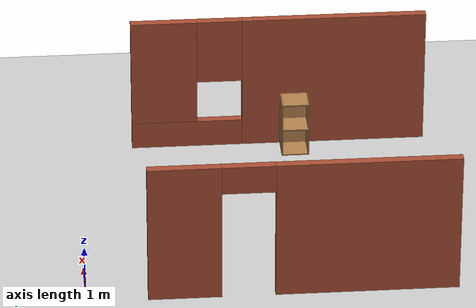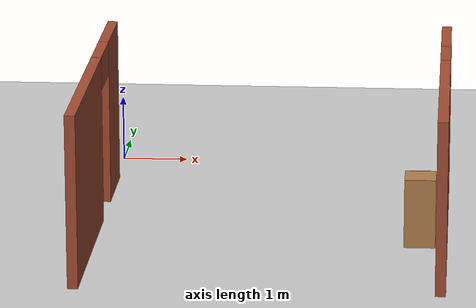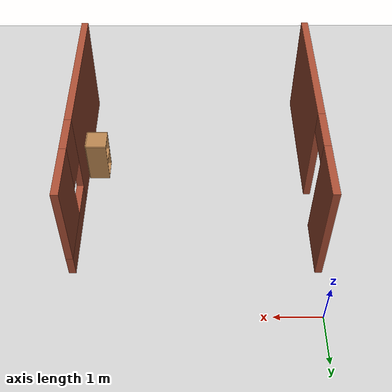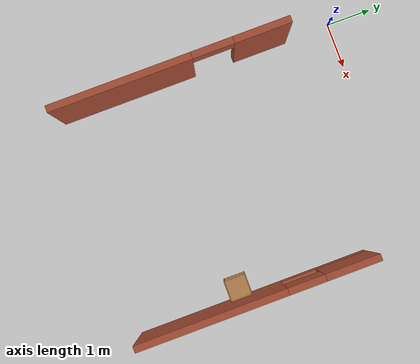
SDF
<sdf version="1.7">
 <world name="default">
  <model name="ground_plane">
   <static>1</static>
   <link name="link">
    <collision name="collision">
     <geometry><plane><normal>0 0 1</normal><size>100 100</size></plane></geometry>
     <surface>
      <contact><collide_bitmask>65535</collide_bitmask></contact>
      <friction><ode><mu>100</mu><mu2>50</mu2></ode></friction>
     </surface>
    </collision>
    <visual name="visual">
     <cast_shadows>0</cast_shadows>
     <geometry><plane><normal>0 0 1</normal><size>100 100</size></plane></geometry>
     <material>
      <script><uri>file://media/materials/scripts/gazebo.material</uri><name>Gazebo/Grey</name></script>
     </material>
    </visual>
   </link>
  </model>
  <model name="cabinet">
   <static>1</static>
   <link name="cabinet_bottom_plate">
    <inertial>
     <pose>0 0 -1 0 -0 0</pose>
     <inertia><ixx>2.05</ixx><ixy>0</ixy><ixz>0</ixz><iyy>2.05</iyy><iyz>0</iyz><izz>2.05</izz></inertia>
     <mass>25</mass>
    </inertial>
    <collision name="cabinet_bottom_plate_geom">
     <pose>0 0 0.01 0 -0 0</pose>
     <geometry><box><size>0.45 0.45 0.02</size></box></geometry>
    </collision>
    <visual name="cabinet_bottom_plate_geom_visual">
     <pose>0 0 0.01 0 -0 0</pose>
     <geometry><box><size>0.45 0.45 0.02</size></box></geometry>
     <material>
      <script><uri>file://media/materials/scripts/gazebo.material</uri><name>Gazebo/Wood</name></script>
     </material>
    </visual>
    <collision name="cabinet_bottom_plate_geom_cabinet_back_plate">
     <pose>0.235 0 0.51 0 -0 0</pose>
     <geometry><box><size>0.02 0.45 1.02</size></box></geometry>
    </collision>
    <visual name="cabinet_bottom_plate_geom_cabinet_back_plate_visual">
     <pose>0.235 0 0.51 0 -0 0</pose>
     <geometry><box><size>0.02 0.45 1.02</size></box></geometry>
     <material>
      <script><uri>file://media/materials/scripts/gazebo.material</uri><name>Gazebo/Wood</name></script>
     </material>
    </visual>
    <collision name="cabinet_bottom_plate_geom_cabinet_left_plate">
     <pose>0 0.235 0.51 0 -0 0</pose>
     <geometry><box><size>0.45 0.02 1.02</size></box></geometry>
    </collision>
    <visual name="cabinet_bottom_plate_geom_cabinet_left_plate_visual">
     <pose>0 0.235 0.51 0 -0 0</pose>
     <geometry><box><size>0.45 0.02 1.02</size></box></geometry>
     <material>
      <script><uri>file://media/materials/scripts/gazebo.material</uri><name>Gazebo/Wood</name></script>
     </material>
    </visual>
    <collision name="cabinet_bottom_plate_geom_cabinet_middle_plate">
     <pose>0 0 0.51 0 -0 0</pose>
     <geometry><box><size>0.45 0.45 0.02</size></box></geometry>
    </collision>
    <visual name="cabinet_bottom_plate_geom_cabinet_middle_plate_visual">
     <pose>0 0 0.51 0 -0 0</pose>
     <geometry><box><size>0.45 0.45 0.02</size></box></geometry>
     <material>
      <script><uri>file://media/materials/scripts/gazebo.material</uri><name>Gazebo/Wood</name></script>
     </material>
    </visual>
    <collision name="cabinet_bottom_plate_geom_cabinet_right_plate">
     <pose>0 -0.235 0.51 0 -0 0</pose>
     <geometry><box><size>0.45 0.02 1.02</size></box></geometry>
    </collision>
    <visual name="cabinet_bottom_plate_geom_cabinet_right_plate_visual">
     <pose>0 -0.235 0.51 0 -0 0</pose>
     <geometry><box><size>0.45 0.02 1.02</size></box></geometry>
     <material>
      <script><uri>file://media/materials/scripts/gazebo.material</uri><name>Gazebo/Wood</name></script>
     </material>
    </visual>
    <collision name="cabinet_bottom_plate_geom_cabinet_top_plate">
     <pose>0 0 1.01 0 -0 0</pose>
     <geometry><box><size>0.45 0.45 0.02</size></box></geometry>
    </collision>
    <visual name="cabinet_bottom_plate_geom_cabinet_top_plate_visual">
     <pose>0 0 1.01 0 -0 0</pose>
     <geometry><box><size>0.45 0.45 0.02</size></box></geometry>
     <material>
      <script><uri>file://media/materials/scripts/gazebo.material</uri><name>Gazebo/Wood</name></script>
     </material>
    </visual>
   </link>
   <pose>4.74463 -3.94895 0 0 -0 0</pose>
  </model>
  <model name="basic_house_model">
   <link name="Wall_19">
    <pose>0.95 -3.425 0 0 0 -1.5708</pose>
    <visual name="Wall_19_Visual_0">
     <pose>-2.00386 0 1.25 0 -0 0</pose>
     <geometry><box><size>1.24228 0.15 2.5</size></box></geometry>
     <material>
      <script><uri>file://media/materials/scripts/gazebo.material</uri><name>Gazebo/Bricks</name></script>
      <ambient>1 1 1 1</ambient>
      <shader type="pixel"/>
     </material>
     <meta><layer>0</layer></meta>
    </visual>
    <visual name="Wall_19_Visual_1">
     <pose>1.07114 0 1.25 0 -0 0</pose>
     <geometry><box><size>3.10772 0.15 2.5</size></box></geometry>
     <material>
      <script><uri>file://media/materials/scripts/gazebo.material</uri><name>Gazebo/Bricks</name></script>
      <ambient>1 1 1 1</ambient>
      <shader type="pixel"/>
     </material>
     <meta><layer>0</layer></meta>
    </visual>
    <visual name="Wall_19_Visual_2">
     <pose>-0.932718 0 2.25 0 -0 0</pose>
     <geometry><box><size>0.9 0.15 0.5</size></box></geometry>
     <material>
      <script><uri>file://media/materials/scripts/gazebo.material</uri><name>Gazebo/Bricks</name></script>
      <ambient>1 1 1 1</ambient>
      <shader type="pixel"/>
     </material>
     <meta><layer>0</layer></meta>
    </visual>
    <collision name="Wall_19_Collision_0">
     <pose>-2.00386 0 1.25 0 -0 0</pose>
     <geometry><box><size>1.24228 0.15 2.5</size></box></geometry>
     <surface>
      <friction>
       <ode><mu>1</mu><mu2>1</mu2><fdir1>0 0 0</fdir1><slip1>0</slip1><slip2>0</slip2></ode>
       <torsional>
        <coefficient>1</coefficient>
        <patch_radius>0</patch_radius>
        <surface_radius>0</surface_radius>
        <use_patch_radius>1</use_patch_radius>
        <ode><slip>0</slip></ode>
       </torsional>
      </friction>
      <bounce><restitution_coefficient>0</restitution_coefficient><threshold>1e+06</threshold></bounce>
      <contact>
       <collide_without_contact>0</collide_without_contact>
       <collide_without_contact_bitmask>1</collide_without_contact_bitmask>
       <collide_bitmask>1</collide_bitmask>
       <ode>
        <soft_cfm>0</soft_cfm>
        <soft_erp>0.2</soft_erp>
        <kp>1e+13</kp>
        <kd>1</kd>
        <max_vel>0.01</max_vel>
        <min_depth>0</min_depth>
       </ode>
       <bullet>
        <split_impulse>1</split_impulse>
        <split_impulse_penetration_threshold>-0.01</split_impulse_penetration_threshold>
        <soft_cfm>0</soft_cfm>
        <soft_erp>0.2</soft_erp>
        <kp>1e+13</kp>
        <kd>1</kd>
       </bullet>
      </contact>
     </surface>
    </collision>
    <collision name="Wall_19_Collision_1">
     <pose>1.07114 0 1.25 0 -0 0</pose>
     <geometry><box><size>3.10772 0.15 2.5</size></box></geometry>
     <surface>
      <friction>
       <ode><mu>1</mu><mu2>1</mu2><fdir1>0 0 0</fdir1><slip1>0</slip1><slip2>0</slip2></ode>
       <torsional>
        <coefficient>1</coefficient>
        <patch_radius>0</patch_radius>
        <surface_radius>0</surface_radius>
        <use_patch_radius>1</use_patch_radius>
        <ode><slip>0</slip></ode>
       </torsional>
      </friction>
      <bounce><restitution_coefficient>0</restitution_coefficient><threshold>1e+06</threshold></bounce>
      <contact>
       <collide_without_contact>0</collide_without_contact>
       <collide_without_contact_bitmask>1</collide_without_contact_bitmask>
       <collide_bitmask>1</collide_bitmask>
       <ode>
        <soft_cfm>0</soft_cfm>
        <soft_erp>0.2</soft_erp>
        <kp>1e+13</kp>
        <kd>1</kd>
        <max_vel>0.01</max_vel>
        <min_depth>0</min_depth>
       </ode>
       <bullet>
        <split_impulse>1</split_impulse>
        <split_impulse_penetration_threshold>-0.01</split_impulse_penetration_threshold>
        <soft_cfm>0</soft_cfm>
        <soft_erp>0.2</soft_erp>
        <kp>1e+13</kp>
        <kd>1</kd>
       </bullet>
      </contact>
     </surface>
    </collision>
    <collision name="Wall_19_Collision_2">
     <pose>-0.932718 0 2.25 0 -0 0</pose>
     <geometry><box><size>0.9 0.15 0.5</size></box></geometry>
     <surface>
      <friction>
       <ode><mu>1</mu><mu2>1</mu2><fdir1>0 0 0</fdir1><slip1>0</slip1><slip2>0</slip2></ode>
       <torsional>
        <coefficient>1</coefficient>
        <patch_radius>0</patch_radius>
        <surface_radius>0</surface_radius>
        <use_patch_radius>1</use_patch_radius>
        <ode><slip>0</slip></ode>
       </torsional>
      </friction>
      <bounce><restitution_coefficient>0</restitution_coefficient><threshold>1e+06</threshold></bounce>
      <contact>
       <collide_without_contact>0</collide_without_contact>
       <collide_without_contact_bitmask>1</collide_without_contact_bitmask>
       <collide_bitmask>1</collide_bitmask>
       <ode>
        <soft_cfm>0</soft_cfm>
        <soft_erp>0.2</soft_erp>
        <kp>1e+13</kp>
        <kd>1</kd>
        <max_vel>0.01</max_vel>
        <min_depth>0</min_depth>
       </ode>
       <bullet>
        <split_impulse>1</split_impulse>
        <split_impulse_penetration_threshold>-0.01</split_impulse_penetration_threshold>
        <soft_cfm>0</soft_cfm>
        <soft_erp>0.2</soft_erp>
        <kp>1e+13</kp>
        <kd>1</kd>
       </bullet>
      </contact>
     </surface>
    </collision>
   </link>
   <link name="Wall_21">
    <pose>6.05 -3.425 0 0 -0 1.5708</pose>
    <visual name="Wall_21_Visual_0">
     <pose>-0.987562 0 1.25 0 -0 0</pose>
     <geometry><box><size>3.27488 0.15 2.5</size></box></geometry>
     <material>
      <script><uri>file://media/materials/scripts/gazebo.material</uri><name>Gazebo/Bricks</name></script>
      <ambient>1 1 1 1</ambient>
      <shader type="pixel"/>
     </material>
     <meta><layer>0</layer></meta>
    </visual>
    <visual name="Wall_21_Visual_1">
     <pose>1.63744 0 0.25 0 -0 0</pose>
     <geometry><box><size>1.97512 0.15 0.5</size></box></geometry>
     <material>
      <script><uri>file://media/materials/scripts/gazebo.material</uri><name>Gazebo/Bricks</name></script>
      <ambient>1 1 1 1</ambient>
      <shader type="pixel"/>
     </material>
     <meta><layer>0</layer></meta>
    </visual>
    <visual name="Wall_21_Visual_2">
     <pose>2.03744 0 1.5 0 -0 0</pose>
     <geometry><box><size>1.17512 0.15 2</size></box></geometry>
     <material>
      <script><uri>file://media/materials/scripts/gazebo.material</uri><name>Gazebo/Bricks</name></script>
      <ambient>1 1 1 1</ambient>
      <shader type="pixel"/>
     </material>
     <meta><layer>0</layer></meta>
    </visual>
    <visual name="Wall_21_Visual_3">
     <pose>1.04988 0 1.9 0 -0 0</pose>
     <geometry><box><size>0.8 0.15 1.2</size></box></geometry>
     <material>
      <script><uri>file://media/materials/scripts/gazebo.material</uri><name>Gazebo/Bricks</name></script>
      <ambient>1 1 1 1</ambient>
      <shader type="pixel"/>
     </material>
     <meta><layer>0</layer></meta>
    </visual>
    <collision name="Wall_21_Collision_3">
     <pose>1.04988 0 1.9 0 -0 0</pose>
     <geometry><box><size>0.8 0.15 1.2</size></box></geometry>
     <surface>
      <friction>
       <ode><mu>1</mu><mu2>1</mu2><fdir1>0 0 0</fdir1><slip1>0</slip1><slip2>0</slip2></ode>
       <torsional>
        <coefficient>1</coefficient>
        <patch_radius>0</patch_radius>
        <surface_radius>0</surface_radius>
        <use_patch_radius>1</use_patch_radius>
        <ode><slip>0</slip></ode>
       </torsional>
      </friction>
      <bounce><restitution_coefficient>0</restitution_coefficient><threshold>1e+06</threshold></bounce>
      <contact>
       <collide_without_contact>0</collide_without_contact>
       <collide_without_contact_bitmask>1</collide_without_contact_bitmask>
       <collide_bitmask>1</collide_bitmask>
       <ode>
        <soft_cfm>0</soft_cfm>
        <soft_erp>0.2</soft_erp>
        <kp>1e+13</kp>
        <kd>1</kd>
        <max_vel>0.01</max_vel>
        <min_depth>0</min_depth>
       </ode>
       <bullet>
        <split_impulse>1</split_impulse>
        <split_impulse_penetration_threshold>-0.01</split_impulse_penetration_threshold>
        <soft_cfm>0</soft_cfm>
        <soft_erp>0.2</soft_erp>
        <kp>1e+13</kp>
        <kd>1</kd>
       </bullet>
      </contact>
     </surface>
    </collision>
    <collision name="Wall_21_Collision_0">
     <pose>-0.987562 0 1.25 0 -0 0</pose>
     <geometry><box><size>3.27488 0.15 2.5</size></box></geometry>
     <surface>
      <friction>
       <ode><mu>1</mu><mu2>1</mu2><fdir1>0 0 0</fdir1><slip1>0</slip1><slip2>0</slip2></ode>
       <torsional>
        <coefficient>1</coefficient>
        <patch_radius>0</patch_radius>
        <surface_radius>0</surface_radius>
        <use_patch_radius>1</use_patch_radius>
        <ode><slip>0</slip></ode>
       </torsional>
      </friction>
      <bounce><restitution_coefficient>0</restitution_coefficient><threshold>1e+06</threshold></bounce>
      <contact>
       <collide_without_contact>0</collide_without_contact>
       <collide_without_contact_bitmask>1</collide_without_contact_bitmask>
       <collide_bitmask>1</collide_bitmask>
       <ode>
        <soft_cfm>0</soft_cfm>
        <soft_erp>0.2</soft_erp>
        <kp>1e+13</kp>
        <kd>1</kd>
        <max_vel>0.01</max_vel>
        <min_depth>0</min_depth>
       </ode>
       <bullet>
        <split_impulse>1</split_impulse>
        <split_impulse_penetration_threshold>-0.01</split_impulse_penetration_threshold>
        <soft_cfm>0</soft_cfm>
        <soft_erp>0.2</soft_erp>
        <kp>1e+13</kp>
        <kd>1</kd>
       </bullet>
      </contact>
     </surface>
    </collision>
    <collision name="Wall_21_Collision_1">
     <pose>1.63744 0 0.25 0 -0 0</pose>
     <geometry><box><size>1.97512 0.15 0.5</size></box></geometry>
     <surface>
      <friction>
       <ode><mu>1</mu><mu2>1</mu2><fdir1>0 0 0</fdir1><slip1>0</slip1><slip2>0</slip2></ode>
       <torsional>
        <coefficient>1</coefficient>
        <patch_radius>0</patch_radius>
        <surface_radius>0</surface_radius>
        <use_patch_radius>1</use_patch_radius>
        <ode><slip>0</slip></ode>
       </torsional>
      </friction>
      <bounce><restitution_coefficient>0</restitution_coefficient><threshold>1e+06</threshold></bounce>
      <contact>
       <collide_without_contact>0</collide_without_contact>
       <collide_without_contact_bitmask>1</collide_without_contact_bitmask>
       <collide_bitmask>1</collide_bitmask>
       <ode>
        <soft_cfm>0</soft_cfm>
        <soft_erp>0.2</soft_erp>
        <kp>1e+13</kp>
        <kd>1</kd>
        <max_vel>0.01</max_vel>
        <min_depth>0</min_depth>
       </ode>
       <bullet>
        <split_impulse>1</split_impulse>
        <split_impulse_penetration_threshold>-0.01</split_impulse_penetration_threshold>
        <soft_cfm>0</soft_cfm>
        <soft_erp>0.2</soft_erp>
        <kp>1e+13</kp>
        <kd>1</kd>
       </bullet>
      </contact>
     </surface>
    </collision>
    <collision name="Wall_21_Collision_2">
     <pose>2.03744 0 1.5 0 -0 0</pose>
     <geometry><box><size>1.17512 0.15 2</size></box></geometry>
     <surface>
      <friction>
       <ode><mu>1</mu><mu2>1</mu2><fdir1>0 0 0</fdir1><slip1>0</slip1><slip2>0</slip2></ode>
       <torsional>
        <coefficient>1</coefficient>
        <patch_radius>0</patch_radius>
        <surface_radius>0</surface_radius>
        <use_patch_radius>1</use_patch_radius>
        <ode><slip>0</slip></ode>
       </torsional>
      </friction>
      <bounce><restitution_coefficient>0</restitution_coefficient><threshold>1e+06</threshold></bounce>
      <contact>
       <collide_without_contact>0</collide_without_contact>
       <collide_without_contact_bitmask>1</collide_without_contact_bitmask>
       <collide_bitmask>1</collide_bitmask>
       <ode>
        <soft_cfm>0</soft_cfm>
        <soft_erp>0.2</soft_erp>
        <kp>1e+13</kp>
        <kd>1</kd>
        <max_vel>0.01</max_vel>
        <min_depth>0</min_depth>
       </ode>
       <bullet>
        <split_impulse>1</split_impulse>
        <split_impulse_penetration_threshold>-0.01</split_impulse_penetration_threshold>
        <soft_cfm>0</soft_cfm>
        <soft_erp>0.2</soft_erp>
        <kp>1e+13</kp>
        <kd>1</kd>
       </bullet>
      </contact>
     </surface>
    </collision>
   </link>
   <static>1</static>
   <pose>-0.976183 -0.248204 0 0 -0 0</pose>
  </model>
 </world>
</sdf>
